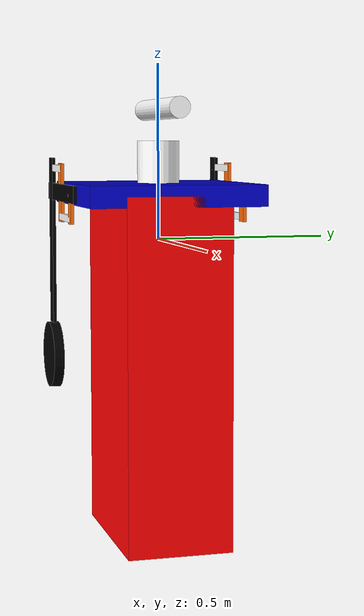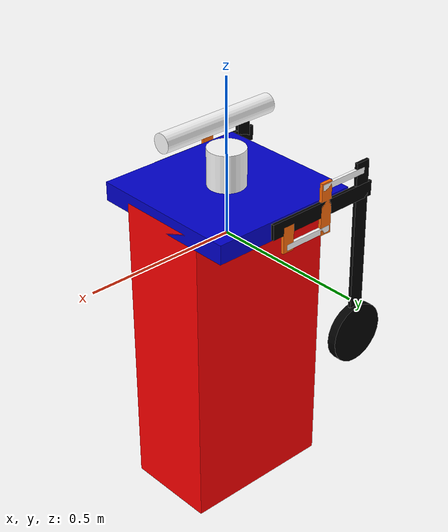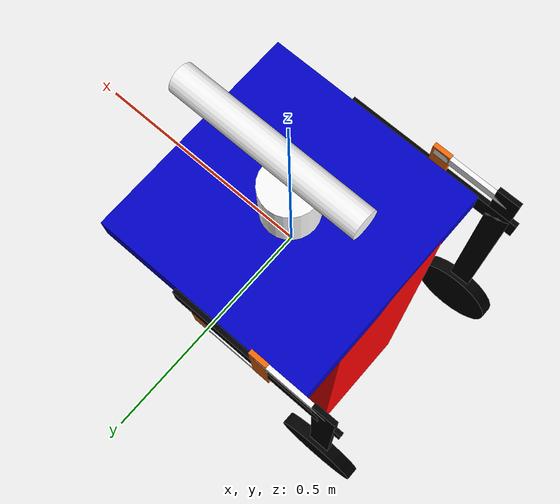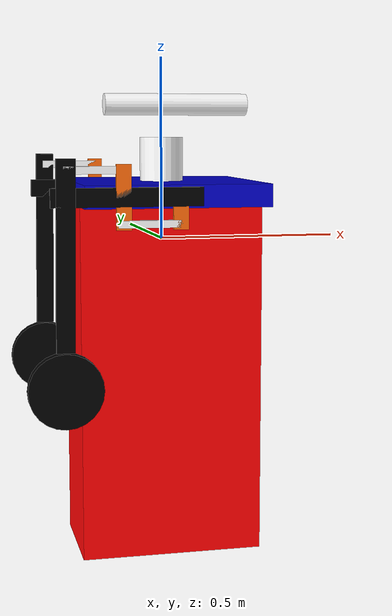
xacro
<?xml version="1.0"?>
<robot xmlns:xacro="http://www.ros.org/wiki/xacro" name="balance_bot">

    <!-- Properties & Constants -->
    <xacro:property name="PI" value="3.1415926535897931"/>

    <!-- Robot Dimensions -->
    <xacro:property name="mass" value="2.0"/>
    <xacro:property name="width" value="0.5"/>
    <xacro:property name="length" value="0.5"/>
    <xacro:property name="height" value="0.061"/>

    <!-- Wheel Properties -->
    <xacro:property name="wheel_length" value="0.03"/>
    <xacro:property name="wheel_radius" value="0.1"/>
    <xacro:property name="wheel_mass" value="0.5"/>

    <!-- Gimbal Properties -->
    <xacro:property name="gimbal_height" value="0.12"/>
    <xacro:property name="gimbal_radius" value="0.06"/>
    <xacro:property name="muzzle_height" value="0.4"/>
    <xacro:property name="muzzle_radius" value="0.03"/>

    <!-- Leg Properties -->
    <xacro:property name="leg_width" value="0.05"/>
    <xacro:property name="leg_thickness" value="0.01"/>
    <xacro:property name="thigh_length" value="0.4"/>
    <xacro:property name="shank_length" value="0.5"/>
    <xacro:property name="leg_mass" value="0.5"/>

    <!-- Macros -->

    <!-- Inertia Macros -->
    <xacro:macro name="box_inertial" params="m x y z ox:=0.0 oy:=0.0 oz:=0.0">
      <inertial>
        <origin xyz="${ox} ${oy} ${oz}" rpy="0 0 0"/>
        <mass value="${m}"/>
        <inertia ixx="${m/12 * (y*y + z*z)}" ixy="0.0" ixz="0.0"
                 iyy="${m/12 * (x*x + z*z)}" iyz="0.0"
                 izz="${m/12 * (x*x + y*y)}"/>
      </inertial>
    </xacro:macro>

    <xacro:macro name="cylinder_inertial" params="m r h">
      <inertial>
        <mass value="${m}"/>
        <inertia ixx="${m/12 * (3*r*r + h*h)}" ixy="0.0" ixz="0.0"
                 iyy="${m/12 * (3*r*r + h*h)}" iyz="0.0"
                 izz="${m/2 * r*r}"/>
      </inertial>
    </xacro:macro>

    <xacro:macro name="cylinder_inertial_y" params="m r h">
      <inertial>
        <mass value="${m}"/>
        <inertia ixx="${m/12 * (3*r*r + h*h)}" ixy="0.0" ixz="0.0"
                 iyy="${m/2 * r*r}" iyz="0.0"
                 izz="${m/12 * (3*r*r + h*h)}"/>
      </inertial>
    </xacro:macro>

    <xacro:macro name="sphere_inertial" params="m r">
        <inertial>
            <mass value="${m}"/>
            <inertia ixx="${2/5 * m * r * r}" ixy="0.0" ixz="0.0"
                     iyy="${2/5 * m * r * r}" iyz="0.0"
                     izz="${2/5 * m * r * r}"/>
        </inertial>
    </xacro:macro>

    <!-- Materials -->
    <material name="orange">
      <color rgba="${255/255} ${108/255} ${10/255} 1.0"/>
    </material>
    <material name="black">
      <color rgba="0.0 0.0 0.0 1.0"/>
    </material>
    <material name="blue">
      <color rgba="0 0 0.8 1"/>
    </material>
    <material name="white">
      <color rgba="1 1 1 1"/>
    </material>

    <!-- Base & Body -->

    <link name="base_footprint"/>

    <joint name="base_joint" type="fixed">
      <parent link="base_footprint"/>
      <child link="base_link"/>
      <origin xyz="0.0 0.0 ${height/2 + wheel_radius}" rpy="0.0 0.0 0.0"/>
    </joint>

    <link name="base_link">
        <visual>
            <geometry>
                <box size="${length} ${width} ${height}"/>
            </geometry>
            <material name="blue"/>
        </visual>
        <collision>
            <geometry>
                <box size="${length} ${width} ${height}"/>
            </geometry>
        </collision>
        <inertial>
            <origin xyz="0.0 0.0 0.0" rpy="0.0 0.0 0.0"/>
            <mass value="${mass}"/>
            <inertia ixx="0.04229" ixy="0.0" ixz="0.0" iyy="0.04229" iyz="0.0" izz="0.08333"/>
        </inertial>
    </link>

    <!-- Sensors: IMU -->
    <link name="imu_link">
        <visual>
            <geometry><box size="0.01 0.01 0.01"/></geometry>
        </visual>
        <xacro:box_inertial m="0.001" x="0.01" y="0.01" z="0.01"/>
    </link>

    <joint name="imu_joint" type="fixed">
        <parent link="base_link"/>
        <child link="imu_link"/>
    </joint>

    <!-- Gimbal System -->

    <link name="gimbal_link">
        <visual>
            <geometry><cylinder radius="${gimbal_radius}" length="${gimbal_height}"/></geometry>
            <material name="white"/>
        </visual>
        <collision>
            <geometry><cylinder radius="${gimbal_radius}" length="${gimbal_height}"/></geometry>
        </collision>
        <xacro:cylinder_inertial m="0.2" r="${gimbal_radius}" h="${gimbal_height}"/>
    </link>

    <joint name="gimbal_joint" type="revolute">
        <parent link="base_link" />
        <child link="gimbal_link" />
        <origin xyz="0 0 ${height / 2 + gimbal_height / 2}" rpy="0 0 0" />
        <axis xyz="0 0 1" />
        <limit lower="-1.0" upper="1.0" effort="3.07" velocity="70" />
    </joint>

    <transmission name="gimbal_trans">
        <type>transmission_interface/SimpleTransmission</type>
        <joint name="gimbal_joint">
            <hardwareInterface>hardware_interface/EffortJointInterface</hardwareInterface>
        </joint>
        <actuator name="gimbal_motor">
            <mechanicalReduction>1</mechanicalReduction>
        </actuator>
    </transmission>

    <link name="muzzle_link">
        <visual>
            <origin xyz="${muzzle_height/10} 0.0 0.0" rpy="0 ${PI/2} 0"/>
            <geometry><cylinder radius="${muzzle_radius}" length="${muzzle_height}"/></geometry>
            <material name="white"/>
        </visual>
        <collision>
            <origin xyz="${muzzle_height/2} 0.0 0.0" rpy="0 ${PI/2} 0"/>
            <geometry><cylinder radius="${muzzle_radius}" length="${muzzle_height}"/></geometry>
        </collision>
        <inertial>
            <mass value="0.8"/>
            <origin xyz="${muzzle_height/10} 0.0 0.0"/>
            <inertia ixx="0.00036" ixy="0.0" ixz="0.0" iyy="0.01085" iyz="0.0" izz="0.0079"/>
        </inertial>
    </link>

    <joint name="muzzle_joint" type="revolute">
        <parent link="gimbal_link" />
        <child link="muzzle_link" />
        <origin xyz="0.0 0 0.15" rpy="0 0 0" />
        <axis xyz="0 1 0" />
        <limit lower="-0.5" upper="0.24" effort="3" velocity="70" />
    </joint>

    <link name="gimbal_imu_link">
      <visual>
        <geometry><box size="0.01 0.01 0.01"/></geometry>
      </visual>
      <xacro:box_inertial m="0.001" x="0.01" y="0.01" z="0.01"/>
    </link>

    <joint name="gimbal_imu_joint" type="fixed">
      <parent link="muzzle_link"/>
      <child link="gimbal_imu_link"/>
    </joint>

    <transmission name="muzzle_trans">
        <type>transmission_interface/SimpleTransmission</type>
        <joint name="muzzle_joint">
            <hardwareInterface>hardware_interface/EffortJointInterface</hardwareInterface>
        </joint>
        <actuator name="muzzle_motor">
            <mechanicalReduction>1</mechanicalReduction>
        </actuator>
    </transmission>

    <!-- Leg Macro (Optimized with closed chain structure and Wheels) -->

    <xacro:macro name="leg" params="side reflect">
        <xacro:property name="y_offset" value="${(width/2 + 0.005) * reflect}"/>

        <!-- 1. Thigh (First Leg) -->
        <link name="${side}_thigh_link">
            <visual>
                <origin xyz="0.0 0.0 -0.14" rpy="0.0 0.0 0.0"/>
                <geometry>
                    <box size="${leg_width} ${leg_thickness} ${thigh_length}"/>
                </geometry>
                <material name="black"/>
            </visual>
            <collision>
                <origin xyz="0.0 0.0 -0.14" rpy="0.0 0.0 0.0"/>
                <geometry>
                    <box size="${leg_width} ${leg_thickness} ${thigh_length}"/>
                </geometry>
            </collision>
            <xacro:box_inertial m="${leg_mass}" x="${leg_width}" y="${leg_thickness}" z="${thigh_length}" oz="-0.14"/>
        </link>

        <joint name="${side}_hip_joint" type="continuous">
            <origin xyz="0.0 ${y_offset} 0" rpy="0.0 ${PI/2} 0.0"/>
            <parent link="base_link"/>
            <child link="${side}_thigh_link"/>
            <axis xyz="0.0 1 0.0"/>
        </joint>

        <transmission name="${side}_hip_trans">
            <type>transmission_interface/SimpleTransmission</type>
            <joint name="${side}_hip_joint">
                <hardwareInterface>hardware_interface/PositionJointInterface</hardwareInterface>
            </joint>
            <actuator name="${side}_hip_motor">
                <hardwareInterface>hardware_interface/PositionJointInterface</hardwareInterface>
                <mechanicalReduction>1</mechanicalReduction>
            </actuator>
        </transmission>

        <!-- 2. Shank (Second Leg) -->
        <link name="${side}_shank_link">
            <visual>
                <origin xyz="0.0 0.0 -0.15" rpy="0.0 0.0 0.0"/>
                <geometry>
                    <box size="${leg_width} ${leg_thickness} ${shank_length}"/>
                </geometry>
                <material name="black"/>
            </visual>
            <collision>
                <origin xyz="0.0 0.0 -0.15" rpy="0.0 0.0 0.0"/>
                <geometry>
                    <box size="${leg_width} ${leg_thickness} ${shank_length}"/>
                </geometry>
            </collision>
            <xacro:box_inertial m="${leg_mass}" x="${leg_width}" y="${leg_thickness}" z="${shank_length}" oz="-0.15"/>
        </link>

        <joint name="${side}_knee_joint" type="revolute">
            <origin xyz="0.0 0.0 -0.3" rpy="0.0 -1.56 0.0"/>
            <parent link="${side}_thigh_link"/>
            <child link="${side}_shank_link"/>
            <axis xyz="0.0 1 0.0"/>
            <limit lower="-0.9" upper="0.9" effort="3" velocity="70" />
        </joint>

        <!-- 3. Closed Chain Structure Elements (Auxiliary Linkages) -->

        <!-- Complex 1: Connects to Thigh -->
        <link name="${side}_linkage_1">
             <visual>
                <origin xyz="0.0 0.0 0" rpy="0.0 0.0 0.0"/>
                <geometry><box size="0.04 0.01 0.17"/></geometry>
                <material name="orange"/>
            </visual>
            <xacro:box_inertial m="0.05" x="0.04" y="0.01" z="0.17"/>
        </link>
        <joint name="${side}_linkage_1_joint" type="revolute">
            <origin xyz="0.0 0.0 -0.15" rpy="0.0 ${PI/2} 0.0"/>
            <parent link="${side}_thigh_link"/>
            <child link="${side}_linkage_1"/>
            <axis xyz="0.0 1 0.0"/>
            <limit lower="-0.9" upper="0.9" effort="3" velocity="70" />
        </joint>

        <!-- Complex 2: Connects to Thigh -->
        <link name="${side}_linkage_2">
             <visual>
                <origin xyz="0.0 0.0 0.0425" rpy="0.0 0.0 0.0"/>
                <geometry><box size="0.04 0.01 0.085"/></geometry>
                <material name="orange"/>
            </visual>
            <xacro:box_inertial m="0.05" x="0.04" y="0.01" z="0.085" oz="0.0425"/>
        </link>
        <joint name="${side}_linkage_2_joint" type="continuous">
            <origin xyz="0 ${y_offset} 0" rpy="0 ${PI} 0"/>
            <parent link="base_link"/>
            <child link="${side}_linkage_2"/>
            <axis xyz="0.0 1 0.0"/>
        </joint>

        <transmission name="${side}_linkage_2_trans">
            <type>transmission_interface/SimpleTransmission</type>
            <joint name="${side}_linkage_2_joint">
                <hardwareInterface>hardware_interface/PositionJointInterface</hardwareInterface>
            </joint>
            <actuator name="${side}_linkage_2_motor">
                <hardwareInterface>hardware_interface/PositionJointInterface</hardwareInterface>
                <mechanicalReduction>1</mechanicalReduction>
            </actuator>
        </transmission>

        <!-- Cross Connection 1: Connects to Linkage 2 -->
        <!-- Originally 'first_connect_complex' parent 'second_complex' (linkage_2) -->
        <link name="${side}_cross_conn_1">
             <visual>
                <origin xyz="0 0.0 0.07" rpy="0.0 0.0 0.0"/>
                <geometry><box size="0.02 0.01 0.17"/></geometry>
                <material name="white"/>
            </visual>
            <xacro:box_inertial m="0.02" x="0.02" y="0.01" z="0.17" oz="0.07"/>
        </link>
        <joint name="${side}_cross_conn_1_joint" type="revolute">
            <origin xyz="0 0 0.07" rpy="0.0 ${-PI/2} 0.0"/>
            <parent link="${side}_linkage_1"/>
            <child link="${side}_cross_conn_1"/>
            <axis xyz="0.0 1 0.0"/>
            <limit lower="-0.9" upper="0.9" effort="3" velocity="70" />
        </joint>

        <!-- Cross Connection 2: Connects to Linkage 1 -->
        <!-- Originally 'second_connect_complex' parent 'first_complex' (linkage_1) -->
        <link name="${side}_cross_conn_2">
             <visual>
                <origin xyz="0 0.0 0.07" rpy="0.0 0.0 0.0"/>
                <geometry><box size="0.02 0.01 0.17"/></geometry>
                <material name="white"/>
            </visual>
             <xacro:box_inertial m="0.02" x="0.02" y="0.01" z="0.17" oz="0.07"/>
        </link>
        <joint name="${side}_cross_conn_2_joint" type="revolute">
            <origin xyz="0 0 -0.07" rpy="0.0 ${PI/2} 0.0"/>
            <parent link="${side}_linkage_1"/>
            <child link="${side}_cross_conn_2"/>
            <axis xyz="0.0 1 0.0"/>
            <limit lower="-0.9" upper="0.9" effort="3" velocity="70" />
        </joint>

        <!-- 4. Wheel -->
        <link name="${side}_wheel_link">
            <visual>
                <origin xyz="0 0 0" rpy="${PI/2} 0 0"/>
                <geometry>
                    <cylinder radius="${wheel_radius}" length="${wheel_length}"/>
                </geometry>
                <material name="black"/>
            </visual>
            <collision>
                <origin xyz="0 0 0" rpy="${PI/2} 0 0"/>
                <geometry>
                    <cylinder radius="${wheel_radius}" length="${wheel_length}"/>
                </geometry>
            </collision>
            <xacro:cylinder_inertial_y m="${wheel_mass}" r="${wheel_radius}" h="${wheel_length}"/>
        </link>

        <joint name="${side}_wheel_joint" type="continuous">
            <origin xyz="0 0 -${shank_length}" rpy="0 0 0"/>
            <parent link="${side}_shank_link"/>
            <child link="${side}_wheel_link"/>
            <axis xyz="0 1 0"/>
            <limit effort="100" velocity="100"/>
        </joint>

        <gazebo reference="${side}_wheel_link">
            <mu1>1.0</mu1>
            <mu2>1.0</mu2>
            <kp>1000000.0</kp>
            <kd>100.0</kd>
            <material>Gazebo/Black</material>
        </gazebo>

        <!-- Wheel Transmission -->
        <transmission name="${side}_wheel_trans">
            <type>transmission_interface/SimpleTransmission</type>
            <joint name="${side}_wheel_joint">
                <hardwareInterface>hardware_interface/EffortJointInterface</hardwareInterface>
            </joint>
            <actuator name="${side}_wheel_motor">
                <hardwareInterface>hardware_interface/EffortJointInterface</hardwareInterface>
                <mechanicalReduction>1</mechanicalReduction>
            </actuator>
        </transmission>

      <gazebo>
        <joint name="${side}_cross_conn_1_loop_joint" type="revolute">
          <parent>${side}_cross_conn_1</parent>
          <child>${side}_linkage_2</child>
          <axis>
            <xyz>0 1 0</xyz>
          </axis>
          <limit lower="-3.14" upper="3.14" effort="3" velocity="100"/>
          <pose>0 0 0.07 0 0 0</pose>
        </joint>
      </gazebo>
      <gazebo>
        <joint name="${side}_cross_conn_2_loop_joint" type="revolute">
          <parent>${side}_cross_conn_2</parent>
          <child>${side}_shank_link</child>
          <axis>
            <xyz>0 1 0</xyz>
          </axis>
          <limit lower="-3.14" upper="3.14" effort="3" velocity="100"/>
          <pose>0 0 0.07 0 0 0</pose>
        </joint>
      </gazebo>

    </xacro:macro>

    <!-- Instantiate Legs -->
    <xacro:leg side="left" reflect="1" />
    <xacro:leg side="right" reflect="-1" />

    <link name="support">
        <inertial>
            <origin xyz="0.0 0.0 0.0" rpy="0.0 0.0 0.0"/>
            <mass value="1000.0"/>
            <inertia ixx="0.0" ixy="0.0" ixz="0.0" iyy="0.0" iyz="0.0" izz="0.0"/>
        </inertial>
        <visual name="">
            <origin xyz="0.0 0.0 0.0" rpy="0.0 0.0 0.0"/>
            <geometry>
                <box size="0.5 0.3 1.0"/>
            </geometry>
            <material name="">
                <color rgba="1.0 0.0 0.0 1.0"/>
                <texture filename=""/>
            </material>
        </visual>
        <collision>
            <origin xyz="0.0 0.0 0.0" rpy="0.0 0.0 0.0"/>
            <geometry>
                <box size="0.5 0.3 1.0"/>
            </geometry>
        </collision>
    </link>
    <joint name="support_joint" type="fixed">
        <origin xyz="0.0 0.0 -0.5" rpy="0.0 0.0 0.0"/>
        <parent link="base_link"/>
        <child link="support"/>
        <axis xyz="0.0 0.0 0.0"/>
        <limit lower="0.0" upper="0.0" effort="0.0" velocity="0.0"/>
    </joint>
    <!-- Gazebo Plugins -->
    <gazebo>
        <plugin name="gazebo_ros_control" filename="libgazebo_ros_control.so">
            <robotNamespace>/</robotNamespace>
        </plugin>
    </gazebo>

    <gazebo reference="gimbal_imu_link">
      <gravity>true</gravity>
      <sensor name="muzzle_imu_sensor" type="imu">
        <always_on>true</always_on>
        <update_rate>1000</update_rate>
        <visualize>true</visualize>
        <imu/>
        <plugin filename="libgazebo_ros_imu_sensor.so" name="muzzle_imu_plugin">
          <topicName>gimbal_imu</topicName>
          <bodyName>gimbal_imu_link</bodyName>
          <updateRateHZ>100.0</updateRateHZ>
          <gaussianNoise>0.0</gaussianNoise>
          <xyzOffset>0 0 0</xyzOffset>
          <rpyOffset>0 0 0</rpyOffset>
          <frameName>muzzle_link</frameName>
          <initialOrientationAsReference>false</initialOrientationAsReference>
        </plugin>
      </sensor>
    </gazebo>

    <gazebo reference="imu_link">
      <gravity>true</gravity>
      <sensor name="imu_sensor" type="imu">
        <always_on>true</always_on>
        <update_rate>1000</update_rate>
        <visualize>true</visualize>
        <imu/>
        <plugin filename="libgazebo_ros_imu_sensor.so" name="imu_plugin">
          <topicName>imu</topicName>
          <bodyName>imu_link</bodyName>
          <updateRateHZ>100.0</updateRateHZ>
          <gaussianNoise>0.0</gaussianNoise>
          <xyzOffset>0 0 0</xyzOffset>
          <rpyOffset>0 0 0</rpyOffset>
          <frameName>imu_link</frameName>
          <initialOrientationAsReference>false</initialOrientationAsReference>
        </plugin>
      </sensor>
    </gazebo>

</robot>
